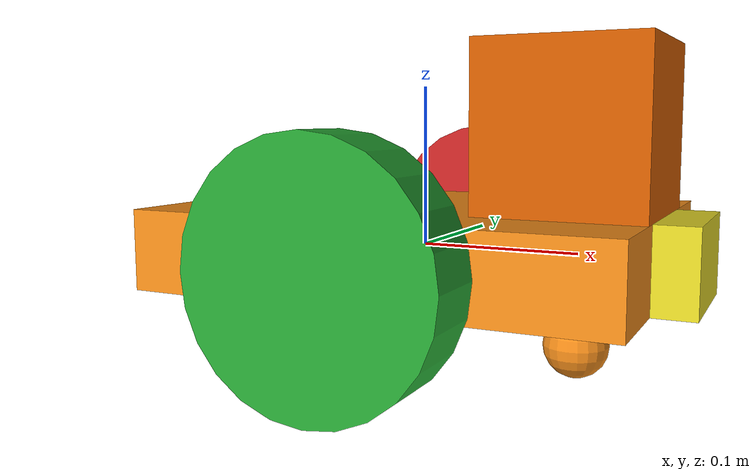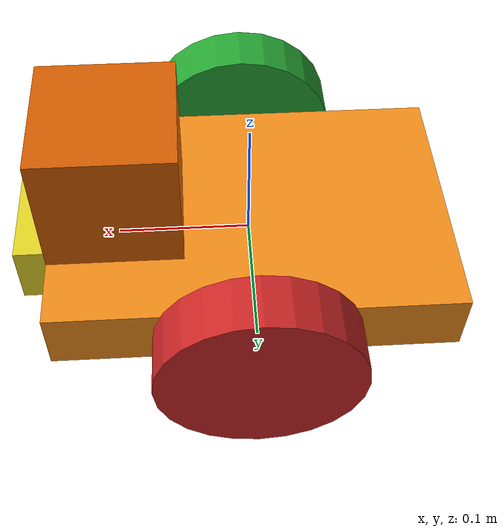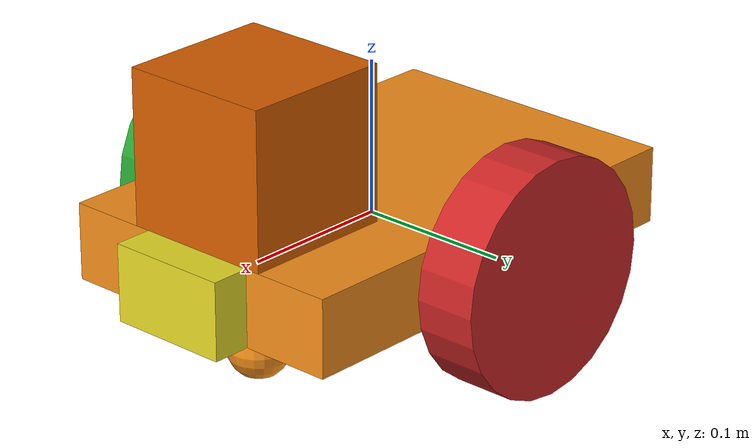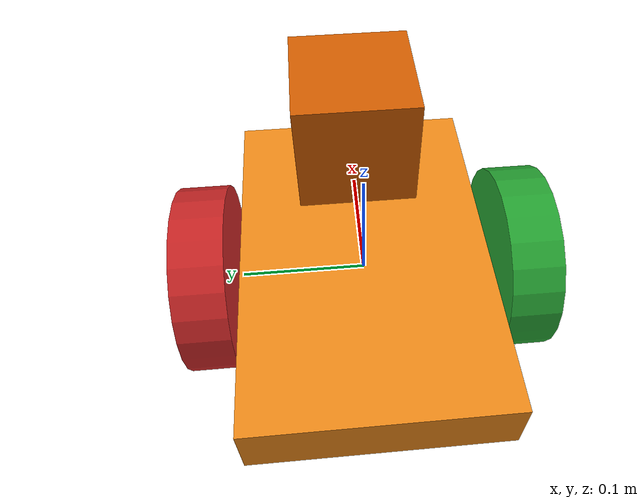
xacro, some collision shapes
<?xml version='1.0'?>

<robot name="my_robot" xmlns:xacro="http://www.ros.org/wiki/xacro">
  <xacro:include filename="$(find my_robot)/urdf/my_robot.gazebo" />
  <link name="robot_footprint"></link>

  <link name='chassis'>
    <pose>0 0 0.075 0 0 0</pose>
    <inertial>
      <mass value="20.0"/>
      <origin xyz="0.0 0 0" rpy=" 0 0 0"/>
      <inertia
          ixx="0.08" ixy="0" ixz="0"
          iyy="0.15" iyz="0"
          izz="0.22"
      />
    </inertial>

    <collision name='chassis_collision'>
      <origin xyz="0 0 0" rpy=" 0 0 0"/>
      <geometry>
        <box size=".3 .2 .05"/>
      </geometry>
    </collision>
    <visual name='chassis_visual'>
      <origin xyz="0 0 0" rpy=" 0 0 0"/>
      <geometry>
        <box size=".3 .2 .05"/>
      </geometry>
    </visual>
    <collision name='back_caster_collision'>
      <origin xyz="-0.10 0 -0.055" rpy=" 0 0 0"/>
      <geometry>
        <sphere radius="0.0199"/>
      </geometry>
    </collision>

    <visual name='back_caster_visual'>
      <origin xyz="-0.10 0 -0.055" rpy=" 0 0 0"/>
      <geometry>
        <sphere radius="0.020"/>
      </geometry>
    </visual>
    <collision name='front_caster_collision'>
      <origin xyz="0.10 0 -0.055" rpy=" 0 0 0"/>
      <geometry>
        <sphere radius="0.0199"/>
      </geometry>
    </collision>

    <visual name='front_caster_visual'>
      <origin xyz="0.10 0 -0.055" rpy=" 0 0 0"/>
      <geometry>
        <sphere radius="0.020"/>
      </geometry>
    </visual>
  </link>

  <link name='left_wheel'>
    <inertial>
      <mass value="10.0"/>
      <inertia
          ixx="0.015" ixy="0" ixz="0"
          iyy="0.015" iyz="0"
          izz="0.030"
      />
    </inertial>
    <collision name='left_wheel_collision'>
      <origin xyz="0.0 0 0" rpy="1.5707 0 0"/>
      <geometry>
        <cylinder radius="0.075" length="0.04"/>
      </geometry>
    </collision>
    <visual name='left_wheel_visual'>
      <origin xyz="0.0 0 0" rpy="1.5707 0  0"/>
      <geometry>
        <cylinder radius="0.075" length="0.04"/>
      </geometry>
    </visual>
  </link>

  <link name='right_wheel'>
     <inertial>
      <mass value="10.0"/>
      <inertia
          ixx="0.015" ixy="0" ixz="0"
          iyy="0.015" iyz="0"
          izz="0.030"
      />
    </inertial>
    <collision name='right_wheel_collision'>
      <origin xyz="0.0 0 0" rpy="1.5707 0 0"/>
      <geometry>
        <cylinder radius="0.075" length="0.04"/>
      </geometry>
    </collision>
    <visual name='right_wheel_visual'>
      <origin xyz="0.0 0 0" rpy="1.5707 0  0"/>
      <geometry>
        <cylinder radius="0.075" length="0.04"/>
      </geometry>
    </visual>
  </link>

  <link name="camera">
    <inertial>
      <mass value="0.1"/>
      <origin xyz="0.0 0 0" rpy=" 0 0 0"/>
      <inertia
          ixx="1e-6" ixy="0" ixz="0"
          iyy="1e-6" iyz="0"
          izz="1e-6"
      />
    </inertial>
    <collision name='camera_collision'>
      <origin xyz="0 0 0" rpy=" 0 0 0"/>
      <geometry>
        <box size=".025 .08 .05"/>
      </geometry>
    </collision>
    <visual name='camera_visual'>
      <origin xyz="0 0 0" rpy=" 0 0 0"/>
      <geometry>
        <box size=".025 .08 .05"/>
      </geometry>
    </visual>
  </link>

  <link name="hokuyo">
    <inertial>
      <mass value="1e-5"/>
      <origin xyz="0.0 0 0" rpy=" 0 0 0"/>
      <inertia
          ixx="1e-6" ixy="0" ixz="0"
          iyy="1e-6" iyz="0"
          izz="1e-6"
      />
    </inertial>
    <collision name='hokuyo_collision'>
      <origin xyz="0 0 0" rpy=" 0 0 0"/>
      <geometry>
        <box size=".1 .1 .1"/>
      </geometry>
    </collision>
    <visual name='hokuyo_visual'>
      <origin xyz="0 0 0" rpy=" 0 0 0"/>
      <geometry>
	 <mesh filename="package://my_robot/meshes/hokuyo.dae"/>
      </geometry>
    </visual>
  </link>
  <!-- RGB-D Camera -->
  <link name="camera_link_optical">
  </link>

  <!-- joints -->
  <joint name="robot_footprint_joint" type="fixed">
    <origin xyz="0 0 0" rpy="0 0 0" />
    <parent link="robot_footprint"/>
    <child link="chassis" />
    <dynamics friction="0.0"/>
  </joint>

  <joint name="left_wheel_hinge" type="continuous" >
    <origin xyz="0.00 0.125 0" rpy="0 0 0"/>
    <child link="left_wheel"/>
    <parent link="chassis"/>
    <axis xyz="0 1 0" rpy="0 0 0"/>
    <limit effort="10000" velocity="1000"/>
    <dynamics damping="1.0" friction="1.0"/>
  </joint>

  <joint name="right_wheel_hinge" type="continuous" >
    <origin xyz="0.00 -0.125 0" rpy="0 0 0"/>
    <child link="right_wheel"/>
    <parent link="chassis"/>
    <axis xyz="0 1 0" rpy="0 0 0"/>
    <limit effort="10000" velocity="1000"/>
    <dynamics damping="1.0" friction="1.0"/>
  </joint>

  <joint name="camera_joint" type="fixed">
    <origin xyz="0.1625 0 0" rpy="0 0 0" />
    <parent link="chassis"/>
    <child link="camera" />
    <axis xyz="0 1 0" rpy="0 0 0"/>
  </joint>

  <joint name="hokuyo_joint" type="fixed">
    <origin xyz=".10 0 .075" rpy="0 0 0" />
    <parent link="chassis"/>
    <child link="hokuyo" />
    <axis xyz="0 1 0" rpy="0 0 0"/>
  </joint>
  <joint name="camera_optical_joint" type="fixed">
    <origin xyz="0 0 0" rpy="-1.5707 0 -1.5707"/>
    <parent link="camera"/>
    <child link="camera_link_optical"/>
  </joint>

  <!-- colors -->
  <gazebo reference="left_wheel">
    <material>Gazebo/Red</material>
  </gazebo>
  <gazebo reference="right_wheel">
    <material>Gazebo/Green</material>
  </gazebo>
  <gazebo reference="chassis">
    <material>Gazebo/Orange</material>
  </gazebo>
  <gazebo reference="camera">
    <material>Gazebo/Yellow</material>
  </gazebo>

</robot>
